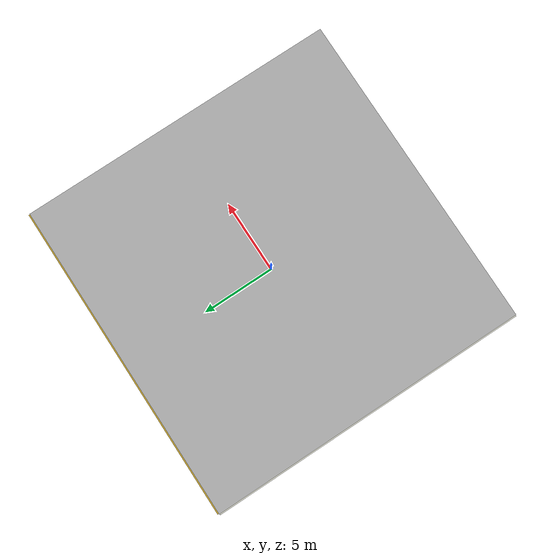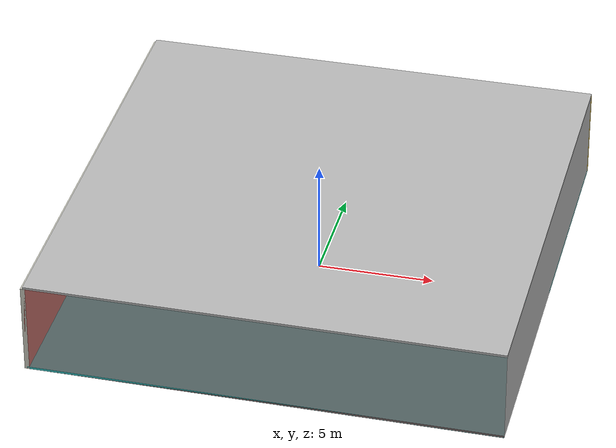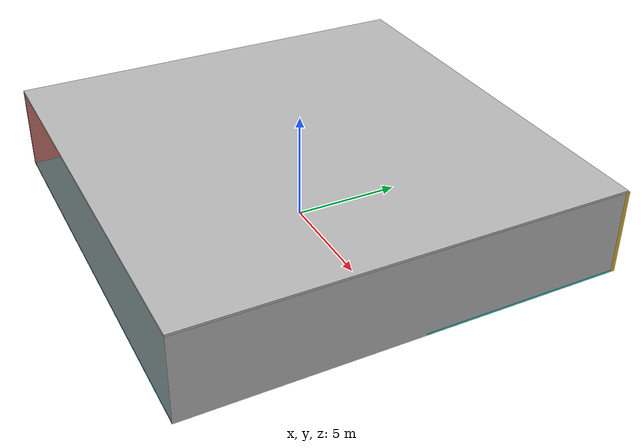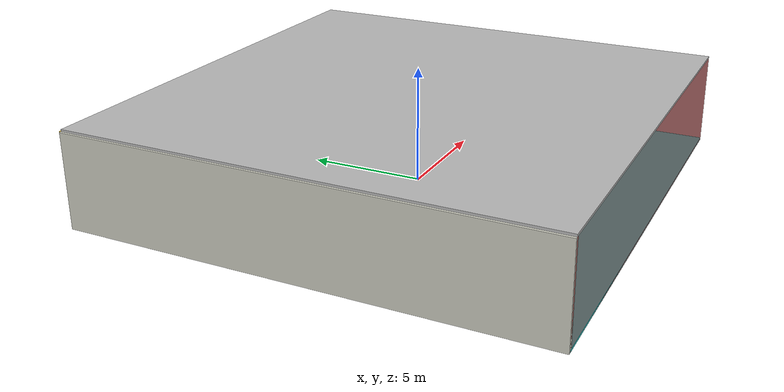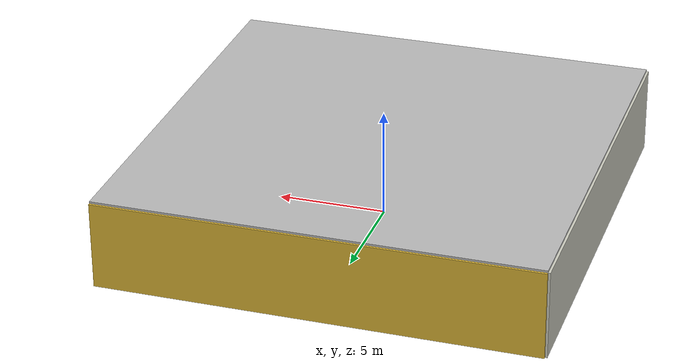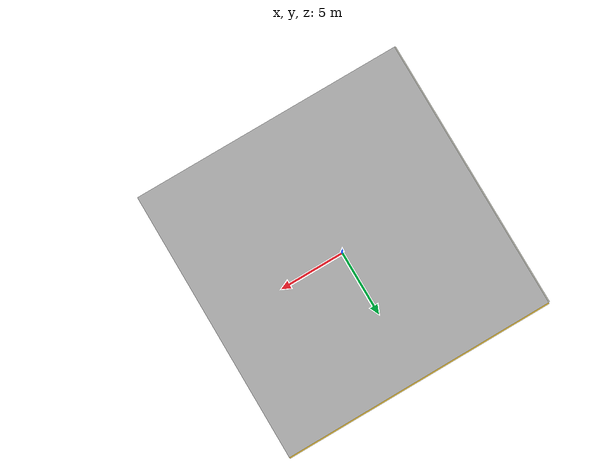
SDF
<sdf version="1.4">
 <world name="default">
  <physics type="ode">
   <max_step_size>0.001</max_step_size>
   <real_time_factor>1</real_time_factor>
   <real_time_update_rate>1000</real_time_update_rate>
   <gravity>0 0 -9.8</gravity>
  </physics>
  <scene><ambient>0.4 0.4 0.4 1</ambient><background>0.7 0.7 0.7 1</background><shadows>1</shadows></scene>
  <model name="Surrounding">
   <static>1</static>
   <link name="Ceiling">
    <collision name="Ceiling_Collision"><geometry><box><size>20 20 0.1</size></box></geometry></collision>
    <visual name="Ceiling_Visual">
     <geometry><box><size>20 20 0.1</size></box></geometry>
     <material>
      <script><uri>file://media/materials/scripts/gazebo.material</uri><name>Gazebo/Pioneer2Body</name></script>
     </material>
    </visual>
    <pose>0 0 4.05 0 0 0</pose>
   </link>
   <link name="Wall_South">
    <collision name="Wall_South_Collision">
     <geometry><box><size>20 0 4</size></box></geometry>
     <pose>0 0 2 0 -0 0</pose>
    </collision>
    <visual name="Wall_South_Visual">
     <pose>0 0 2 0 -0 0</pose>
     <geometry><box><size>20 0 4</size></box></geometry>
     <material>
      <script><uri>file://media/materials/scripts/gazebo.material</uri><name>Gazebo/RedTransparent</name></script>
     </material>
    </visual>
    <velocity_decay><linear>0</linear><angular>0</angular></velocity_decay>
    <pose>0 -10 0 0 -0 0</pose>
   </link>
   <link name="Wall_East">
    <collision name="Wall_21_Collision">
     <geometry><box><size>20 0 4</size></box></geometry>
     <pose>0 0 2 0 -0 0</pose>
    </collision>
    <visual name="Wall_21_Visual">
     <pose>0 0 2 0 -0 0</pose>
     <geometry><box><size>20 0 4</size></box></geometry>
     <material>
      <script><uri>file://media/materials/scripts/gazebo.material</uri><name>Gazebo/LightOn</name></script>
     </material>
    </visual>
    <velocity_decay><linear>0</linear><angular>0</angular></velocity_decay>
    <pose>10 0 0 0 -0 1.5708</pose>
   </link>
   <link name="Wall_North">
    <collision name="Wall_22_Collision">
     <geometry><box><size>20 0.2 4</size></box></geometry>
     <pose>0 0 2 0 -0 0</pose>
    </collision>
    <visual name="Wall_22_Visual">
     <pose>0 0 2 0 -0 0</pose>
     <geometry><box><size>20 0.2 4</size></box></geometry>
     <material>
      <script><uri>file://media/materials/scripts/gazebo.material</uri><name>Gazebo/Gold</name></script>
     </material>
    </visual>
    <velocity_decay><linear>0</linear><angular>0</angular></velocity_decay>
    <pose>0 10 0 0 -0 0</pose>
   </link>
   <link name="Wall_West">
    <collision name="Wall_23_Collision">
     <geometry><box><size>20 0.2 4</size></box></geometry>
     <pose>0 0 2 0 -0 0</pose>
    </collision>
    <visual name="Wall_23_Visual">
     <pose>0 0 2 0 -0 0</pose>
     <geometry><box><size>20 0.2 4</size></box></geometry>
     <material>
      <script><uri>file://media/materials/scripts/gazebo.material</uri><name>Gazebo/PaintedWall</name></script>
     </material>
    </visual>
    <velocity_decay><linear>0</linear><angular>0</angular></velocity_decay>
    <pose>-10 0 0 0 0 -1.5708</pose>
   </link>
   <link name="Ground_link">
    <collision name="collision">
     <pose>0 0 .05 0 -0 0</pose>
     <geometry><box><size>20 20 0.1</size></box></geometry>
    </collision>
    <visual name="visual">
     <pose>0 0 .05 0 -0 0</pose>
     <geometry><box><size>20 20 0.1</size></box></geometry>
     <material>
      <script><uri>file://media/materials/scripts/gazebo.material</uri><name>Gazebo/TurquoiseGlow</name></script>
     </material>
    </visual>
   </link>
   <static>1</static>
  </model>
  <spherical_coordinates>
   <surface_model>EARTH_WGS84</surface_model>
   <latitude_deg>0</latitude_deg>
   <longitude_deg>0</longitude_deg>
   <elevation>0</elevation>
   <heading_deg>0</heading_deg>
  </spherical_coordinates>
  <light name="lightball_0" type="diffuse">
   <diffuse>0.8 0.8 0.8 1</diffuse>
   <specular>0.2 0.2 0.2 1</specular>
   <attenuation>
    <range>100</range>
    <constant>0.7</constant>
    <linear>0.01</linear>
    <quadratic>0.001</quadratic>
   </attenuation>
   <direction>-0.5 0.1 -0.9</direction>
   <pose>4.93125223568 -8.41140473187 3.89035393706 0 0 0</pose>
  </light>
  <light name="lightball_1" type="diffuse">
   <diffuse>0.8 0.8 0.8 1</diffuse>
   <specular>0.2 0.2 0.2 1</specular>
   <attenuation>
    <range>100</range>
    <constant>0.7</constant>
    <linear>0.01</linear>
    <quadratic>0.001</quadratic>
   </attenuation>
   <direction>-0.5 0.1 -0.9</direction>
   <pose>9.85414119427 -1.61656203129 2.61197420138 0 0 0</pose>
  </light>
  <light name="lightball_2" type="diffuse">
   <diffuse>0.8 0.8 0.8 1</diffuse>
   <specular>0.2 0.2 0.2 1</specular>
   <attenuation>
    <range>100</range>
    <constant>0.7</constant>
    <linear>0.01</linear>
    <quadratic>0.001</quadratic>
   </attenuation>
   <direction>-0.5 0.1 -0.9</direction>
   <pose>-4.19704278398 -8.29399565598 3.36368178309 0 0 0</pose>
  </light>
  <light name="lightball_3" type="diffuse">
   <diffuse>0.8 0.8 0.8 1</diffuse>
   <specular>0.2 0.2 0.2 1</specular>
   <attenuation>
    <range>100</range>
    <constant>0.7</constant>
    <linear>0.01</linear>
    <quadratic>0.001</quadratic>
   </attenuation>
   <direction>-0.5 0.1 -0.9</direction>
   <pose>5.15636348937 9.63962654637 2.37151640363 0 0 0</pose>
  </light>
  <light name="lightball_4" type="diffuse">
   <diffuse>0.8 0.8 0.8 1</diffuse>
   <specular>0.2 0.2 0.2 1</specular>
   <attenuation>
    <range>100</range>
    <constant>0.7</constant>
    <linear>0.01</linear>
    <quadratic>0.001</quadratic>
   </attenuation>
   <direction>-0.5 0.1 -0.9</direction>
   <pose>-4.31083073835 -7.38303919334 3.67084901993 0 0 0</pose>
  </light>
  <light name="lightball_5" type="diffuse">
   <diffuse>0.8 0.8 0.8 1</diffuse>
   <specular>0.2 0.2 0.2 1</specular>
   <attenuation>
    <range>100</range>
    <constant>0.7</constant>
    <linear>0.01</linear>
    <quadratic>0.001</quadratic>
   </attenuation>
   <direction>-0.5 0.1 -0.9</direction>
   <pose>-8.62087191651 -2.33107501621 3.20949711517 0 0 0</pose>
  </light>
  <light name="lightball_6" type="diffuse">
   <diffuse>0.8 0.8 0.8 1</diffuse>
   <specular>0.2 0.2 0.2 1</specular>
   <attenuation>
    <range>100</range>
    <constant>0.7</constant>
    <linear>0.01</linear>
    <quadratic>0.001</quadratic>
   </attenuation>
   <direction>-0.5 0.1 -0.9</direction>
   <pose>5.41988490025 7.51439038602 1.09221434061 0 0 0</pose>
  </light>
  <light name="lightball_7" type="diffuse">
   <diffuse>0.8 0.8 0.8 1</diffuse>
   <specular>0.2 0.2 0.2 1</specular>
   <attenuation>
    <range>100</range>
    <constant>0.7</constant>
    <linear>0.01</linear>
    <quadratic>0.001</quadratic>
   </attenuation>
   <direction>-0.5 0.1 -0.9</direction>
   <pose>1.84580408628 8.07213337829 1.26121965901 0 0 0</pose>
  </light>
  <light name="lightball_8" type="diffuse">
   <diffuse>0.8 0.8 0.8 1</diffuse>
   <specular>0.2 0.2 0.2 1</specular>
   <attenuation>
    <range>100</range>
    <constant>0.7</constant>
    <linear>0.01</linear>
    <quadratic>0.001</quadratic>
   </attenuation>
   <direction>-0.5 0.1 -0.9</direction>
   <pose>-8.07153669821 5.927749623 1.17545489729 0 0 0</pose>
  </light>
  <light name="lightball_9" type="diffuse">
   <diffuse>0.8 0.8 0.8 1</diffuse>
   <specular>0.2 0.2 0.2 1</specular>
   <attenuation>
    <range>100</range>
    <constant>0.7</constant>
    <linear>0.01</linear>
    <quadratic>0.001</quadratic>
   </attenuation>
   <direction>-0.5 0.1 -0.9</direction>
   <pose>-7.6961498783 6.72112965315 3.02087170735 0 0 0</pose>
  </light>
  <light name="lightball_10" type="diffuse">
   <diffuse>0.8 0.8 0.8 1</diffuse>
   <specular>0.2 0.2 0.2 1</specular>
   <attenuation>
    <range>100</range>
    <constant>0.7</constant>
    <linear>0.01</linear>
    <quadratic>0.001</quadratic>
   </attenuation>
   <direction>-0.5 0.1 -0.9</direction>
   <pose>-7.84633015031 -7.07326498388 1.97876752325 0 0 0</pose>
  </light>
  <light name="lightball_11" type="diffuse">
   <diffuse>0.8 0.8 0.8 1</diffuse>
   <specular>0.2 0.2 0.2 1</specular>
   <attenuation>
    <range>100</range>
    <constant>0.7</constant>
    <linear>0.01</linear>
    <quadratic>0.001</quadratic>
   </attenuation>
   <direction>-0.5 0.1 -0.9</direction>
   <pose>9.54297561089 7.15922259841 1.73245753512 0 0 0</pose>
  </light>
  <light name="lightball_12" type="diffuse">
   <diffuse>0.8 0.8 0.8 1</diffuse>
   <specular>0.2 0.2 0.2 1</specular>
   <attenuation>
    <range>100</range>
    <constant>0.7</constant>
    <linear>0.01</linear>
    <quadratic>0.001</quadratic>
   </attenuation>
   <direction>-0.5 0.1 -0.9</direction>
   <pose>-4.08075761738 4.1874990084 2.56005788032 0 0 0</pose>
  </light>
  <include>
   <uri>model://robocup_3Dsim_goal</uri>
   <pose>-8.22419441426 -1.38894675804 0 0 0 1.48237522613</pose>
  </include>
  <include><uri>model://cabinet</uri><pose>2.09035757921 4.94601764862 0 0 0 1.80199433155</pose></include>
  <include><uri>model://cabinet</uri><pose>5.25621056948 -1.37215084962 0 0 0 1.71699606475</pose></include>
 </world>
</sdf>

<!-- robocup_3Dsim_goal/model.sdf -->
<sdf version="1.5">
  <model name="robocup_3d_goal">
    <static>true</static>
    <link name="left_post">
      <pose>0 1.05 0.45 0 0 0</pose>
      <collision name="collision">
        <geometry>
          <cylinder>
            <radius>0.05</radius>
            <length>0.9</length>
          </cylinder>
        </geometry>
      </collision>
      <visual name="visual">
        <geometry>
          <cylinder>
            <radius>0.05</radius>
            <length>0.9</length>
          </cylinder>
        </geometry>
        <material>
          <script>
            <uri>file://media/materials/scripts/gazebo.material</uri>
            <name>Gazebo/ZincYellow</name>
          </script>
        </material>
      </visual>
    </link>
    <link name="left_support_horiz_lower">
      <pose>0.30 1.05 0.01 0 0 0</pose>
      <collision name="collision">
        <geometry>
          <box>
            <size>0.50 0.02 0.02</size>
          </box>
        </geometry>
      </collision>
      <visual name="visual">
        <geometry>
          <box>
            <size>0.50 0.02 0.02</size>
          </box>
        </geometry>
        <material>
          <script>
            <uri>file://media/materials/scripts/gazebo.material</uri>
            <name>Gazebo/White</name>
          </script>
        </material>
      </visual>
    </link>
    <link name="left_support_horiz_upper">
      <pose>0.30 1.05 0.79 0 0 0</pose>
      <collision name="collision">
        <geometry>
          <box>
            <size>0.50 0.02 0.02</size>
          </box>
        </geometry>
      </collision>
      <visual name="visual">
        <geometry>
          <box>
            <size>0.50 0.02 0.02</size>
          </box>
        </geometry>
        <material>
          <script>
            <uri>file://media/materials/scripts/gazebo.material</uri>
            <name>Gazebo/White</name>
          </script>
        </material>
      </visual>
    </link>
    <link name="left_support_vertical">
      <pose>0.56 1.05 0.4 0 1.5708 0</pose>
      <collision name="collision">
        <geometry>
          <box>
            <size>0.80 0.02 0.02</size>
          </box>
        </geometry>
      </collision>
      <visual name="visual">
        <geometry>
          <box>
            <size>0.80 0.02 0.02</size>
          </box>
        </geometry>
        <material>
          <script>
            <uri>file://media/materials/scripts/gazebo.material</uri>
            <name>Gazebo/White</name>
          </script>
        </material>
      </visual>
    </link>
    <link name="right_support_horiz_lower">
      <pose>0.30 -1.05 0.01 0 0 0</pose>
      <collision name="collision">
        <geometry>
          <box>
            <size>0.50 0.02 0.02</size>
          </box>
        </geometry>
      </collision>
      <visual name="visual">
        <geometry>
          <box>
            <size>0.50 0.02 0.02</size>
          </box>
        </geometry>
        <material>
          <script>
            <uri>file://media/materials/scripts/gazebo.material</uri>
            <name>Gazebo/White</name>
          </script>
        </material>
      </visual>
    </link>
    <link name="right_support_horiz_upper">
      <pose>0.30 -1.05 0.79 0 0 0</pose>
      <collision name="collision">
        <geometry>
          <box>
            <size>0.50 0.02 0.02</size>
          </box>
        </geometry>
      </collision>
      <visual name="visual">
        <geometry>
          <box>
            <size>0.50 0.02 0.02</size>
          </box>
        </geometry>
        <material>
          <script>
            <uri>file://media/materials/scripts/gazebo.material</uri>
            <name>Gazebo/White</name>
          </script>
        </material>
      </visual>
    </link>
    <link name="right_support_vertical">
      <pose>0.56 -1.05 0.4 0 1.5708 0</pose>
      <collision name="collision">
        <geometry>
          <box>
            <size>0.80 0.02 0.02</size>
          </box>
        </geometry>
      </collision>
      <visual name="visual">
        <geometry>
          <box>
            <size>0.80 0.02 0.02</size>
          </box>
        </geometry>
        <material>
          <script>
            <uri>file://media/materials/scripts/gazebo.material</uri>
            <name>Gazebo/White</name>
          </script>
        </material>
      </visual>
    </link>
    <link name="center_support_horiz_lower">
      <pose>0.56 0 0.01 0 1.5708 0</pose>
      <collision name="collision">
        <geometry>
          <box>
            <size>0.02 2.08 0.02</size>
          </box>
        </geometry>
      </collision>
      <visual name="visual">
        <geometry>
          <box>
            <size>0.02 2.08 0.02</size>
          </box>
        </geometry>
        <material>
          <script>
            <uri>file://media/materials/scripts/gazebo.material</uri>
            <name>Gazebo/White</name>
          </script>
        </material>
      </visual>
    </link>
    <link name="center_support_horiz_upper">
      <pose>0.56 0 0.79 0 1.5708 0</pose>
      <collision name="collision">
        <geometry>
          <box>
            <size>0.02 2.08 0.02</size>
          </box>
        </geometry>
      </collision>
      <visual name="visual">
        <geometry>
          <box>
            <size>0.02 2.08 0.02</size>
          </box>
        </geometry>
        <material>
          <script>
            <uri>file://media/materials/scripts/gazebo.material</uri>
            <name>Gazebo/White</name>
          </script>
        </material>
      </visual>
    </link>
    <link name="right_post">
      <pose>0 -1.05 0.45 0 0 0</pose>
      <collision name="collision">
        <geometry>
          <cylinder>
            <radius>0.05</radius>
            <length>0.9</length>
          </cylinder>
        </geometry>
      </collision>
      <visual name="visual">
        <geometry>
          <cylinder>
            <radius>0.05</radius>
            <length>0.9</length>
          </cylinder>
        </geometry>
        <material>
          <script>
            <uri>file://media/materials/scripts/gazebo.material</uri>
            <name>Gazebo/ZincYellow</name>
          </script>
        </material>
      </visual>
    </link>
    <link name="crossbar">
      <pose>0 0 0.85 1.57 1.57 0</pose>
      <collision name="collision">
        <geometry>
          <cylinder>
            <radius>0.05</radius>
            <length>2.0</length>
          </cylinder>
        </geometry>
      </collision>
      <visual name="visual">
        <geometry>
          <cylinder>
            <radius>0.05</radius>
            <length>2.0</length>
          </cylinder>
        </geometry>
        <material>
          <script>
            <uri>file://media/materials/scripts/gazebo.material</uri>
            <name>Gazebo/ZincYellow</name>
          </script>
        </material>
      </visual>
    </link>
    <link name="center_net">
      <pose>0.56 0 0.40 0 0 0</pose>
      <collision name="collision">
        <geometry>
          <box>
            <size>0.01 2.1 0.80</size>
          </box>
        </geometry>
      </collision>
      <visual name="visual">
        <geometry>
          <box>
            <size>0.01 2.1 0.80</size>
          </box>
        </geometry>
        <material>
          <script>
            <uri>model://../model_source/models/robocup09_spl_field/materials/scripts/</uri>
            <uri>model://../model_source/models/robocup09_spl_field/materials/textures/</uri>
            <name>RoboCup/Net</name>
          </script>
        </material>
      </visual>
    </link>
    <link name="left_net">
      <pose>0.30 1.05 0.40 0 0 0</pose>
      <collision name="collision">
        <geometry>
          <box>
            <size>0.50 0.01 0.76</size>
          </box>
        </geometry>
      </collision>
      <visual name="visual">
        <geometry>
          <box>
            <size>0.50 0.01 0.76</size>
          </box>
        </geometry>
        <material>
          <script>
            <uri>model://../model_source/models/robocup09_spl_field/materials/scripts/</uri>
            <uri>model://../model_source/models/robocup09_spl_field/materials/textures/</uri>
            <name>RoboCup/Net</name>
          </script>
        </material>
      </visual>
    </link>
    <link name="right_net">
      <pose>0.30 -1.05 0.40 0 0 0</pose>
      <collision name="collision">
        <geometry>
          <box>
            <size>0.50 0.01 0.76</size>
          </box>
        </geometry>
      </collision>
      <visual name="visual">
        <geometry>
          <box>
            <size>0.50 0.01 0.76</size>
          </box>
        </geometry>
        <material>
          <script>
            <uri>model://../model_source/models/robocup09_spl_field/materials/scripts/</uri>
            <uri>model://../model_source/models/robocup09_spl_field/materials/textures/</uri>
            <name>RoboCup/Net</name>
          </script>
        </material>
      </visual>
    </link>
  </model>
</sdf>

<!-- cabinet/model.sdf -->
<sdf version="1.5">
  <model name="cabinet">
    <static>true</static>
    <link name="cabinet_bottom_plate">
      <inertial>
        <pose>0 0 -1 0 0 0</pose>
        <inertia>
          <ixx>2.050000</ixx>
          <ixy>0</ixy>
          <ixz>0</ixz>
          <iyy>2.050000</iyy>
          <iyz>0</iyz>
          <izz>2.050000</izz>
        </inertia>
        <mass>25.000000</mass>
      </inertial>
      <collision name="cabinet_bottom_plate_geom">
        <pose>0 0 0.010000 0 0 0</pose>
        <geometry>
          <box>
            <size>0.450000 0.450000 0.020000</size>
          </box>
        </geometry>
      </collision>
      <visual name="cabinet_bottom_plate_geom_visual">
        <pose>0 0 0.010000 0 0 0</pose>
        <geometry>
          <box>
            <size>0.450000 0.450000 0.020000</size>
          </box>
        </geometry>
        <material>
          <script>
            <uri>model://media/materials/scripts/gazebo.material</uri>
            <name>Gazebo/Wood</name>
          </script>
        </material>
      </visual>
      <collision name="cabinet_bottom_plate_geom_cabinet_back_plate">
        <pose>0.235000 0 0.510000 0 0 0</pose>
        <geometry>
          <box>
            <size>0.020000 0.450000 1.020000</size>
          </box>
        </geometry>
      </collision>
      <visual name="cabinet_bottom_plate_geom_cabinet_back_plate_visual">
        <pose>0.235000 0 0.510000 0 0 0</pose>
        <geometry>
          <box>
            <size>0.020000 0.450000 1.020000</size>
          </box>
        </geometry>
        <material>
          <script>
            <uri>model://media/materials/scripts/gazebo.material</uri>
            <name>Gazebo/Wood</name>
          </script>
        </material>
      </visual>
      <collision name="cabinet_bottom_plate_geom_cabinet_left_plate">
        <pose>0 0.235000 0.510000 0 0 0</pose>
        <geometry>
          <box>
            <size>0.450000 0.020000 1.020000</size>
          </box>
        </geometry>
      </collision>
      <visual name="cabinet_bottom_plate_geom_cabinet_left_plate_visual">
        <pose>0 0.235000 0.510000 0 0 0</pose>
        <geometry>
          <box>
            <size>0.450000 0.020000 1.020000</size>
          </box>
        </geometry>
        <material>
          <script>
            <uri>model://media/materials/scripts/gazebo.material</uri>
            <name>Gazebo/Wood</name>
          </script>
        </material>
      </visual>
      <collision name="cabinet_bottom_plate_geom_cabinet_middle_plate">
        <pose>0 0 0.510000 0 0 0</pose>
        <geometry>
          <box>
            <size>0.450000 0.450000 0.020000</size>
          </box>
        </geometry>
      </collision>
      <visual name="cabinet_bottom_plate_geom_cabinet_middle_plate_visual">
        <pose>0 0 0.510000 0 0 0</pose>
        <geometry>
          <box>
            <size>0.450000 0.450000 0.020000</size>
          </box>
        </geometry>
        <material>
          <script>
            <uri>model://media/materials/scripts/gazebo.material</uri>
            <name>Gazebo/Wood</name>
          </script>
        </material>
      </visual>
      <collision name="cabinet_bottom_plate_geom_cabinet_right_plate">
        <pose>0 -0.235000 0.510000 0 0 0</pose>
        <geometry>
          <box>
            <size>0.450000 0.020000 1.020000</size>
          </box>
        </geometry>
      </collision>
      <visual name="cabinet_bottom_plate_geom_cabinet_right_plate_visual">
        <pose>0 -0.235000 0.510000 0 0 0</pose>
        <geometry>
          <box>
            <size>0.450000 0.020000 1.020000</size>
          </box>
        </geometry>
        <material>
          <script>
            <uri>model://media/materials/scripts/gazebo.material</uri>
            <name>Gazebo/Wood</name>
          </script>
        </material>
      </visual>
      <collision name="cabinet_bottom_plate_geom_cabinet_top_plate">
        <pose>0 0 1.010000 0 0 0</pose>
        <geometry>
          <box>
            <size>0.450000 0.450000 0.020000</size>
          </box>
        </geometry>
      </collision>
      <visual name="cabinet_bottom_plate_geom_cabinet_top_plate_visual">
        <pose>0 0 1.010000 0 0 0</pose>
        <geometry>
          <box>
            <size>0.450000 0.450000 0.020000</size>
          </box>
        </geometry>
        <material>
          <script>
            <uri>model://media/materials/scripts/gazebo.material</uri>
            <name>Gazebo/Wood</name>
          </script>
        </material>
      </visual>
    </link>
  </model>
</sdf>
